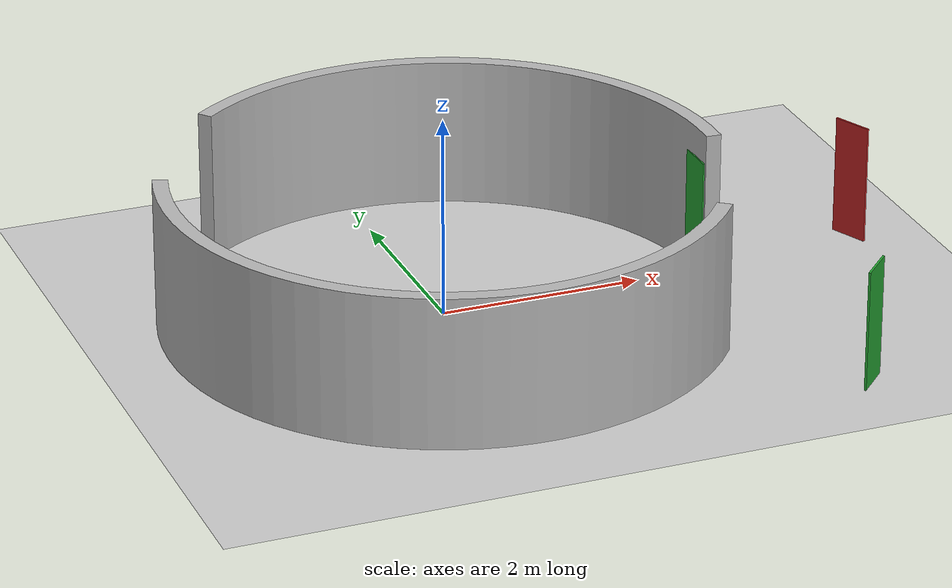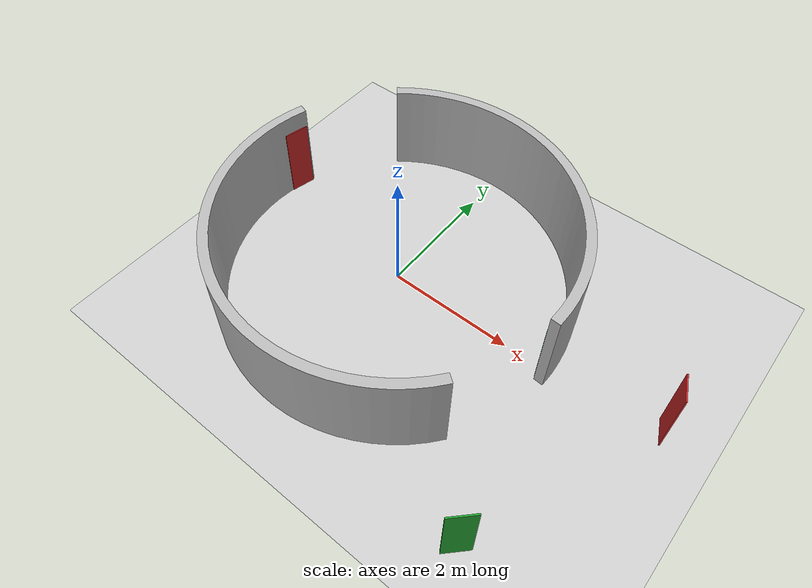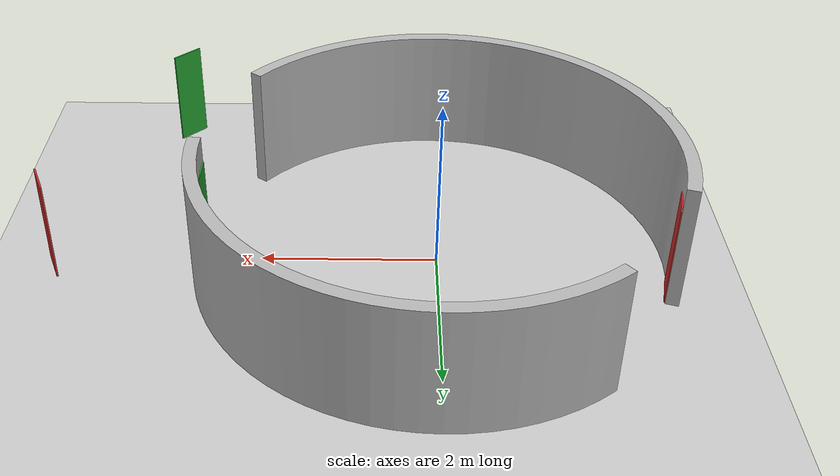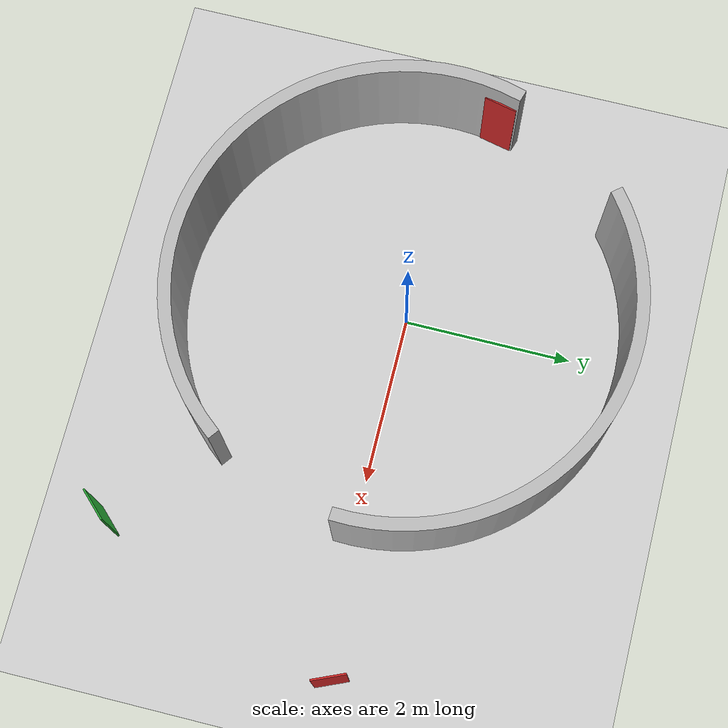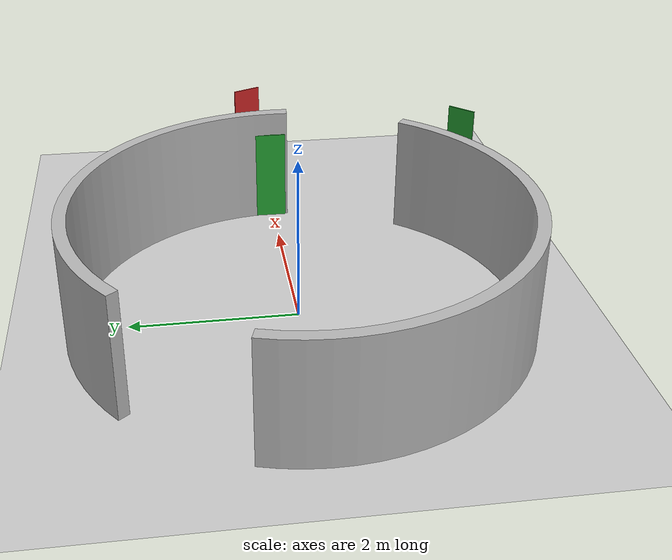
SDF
<sdf version="1.6">
 <world name="default">
  <light name="sun" type="directional">
   <pose>0 0 10 0 -0 0</pose>
   <diffuse>0.8 0.8 0.8 1</diffuse>
   <specular>0.2 0.2 0.2 1</specular>
   <attenuation>
    <range>1000</range>
    <constant>0.9</constant>
    <linear>0.01</linear>
    <quadratic>0.001</quadratic>
   </attenuation>
   <direction>-0.5 0.1 -0.9</direction>
  </light>
  <model name="ground_plane">
   <static>1</static>
   <link name="link">
    <collision name="collision">
     <geometry><plane><normal>0 0 1</normal><size>100 100</size></plane></geometry>
     <surface>
      <contact><collide_bitmask>65535</collide_bitmask></contact>
      <friction><ode><mu>100</mu><mu2>50</mu2></ode></friction>
     </surface>
    </collision>
    <visual name="visual">
     <cast_shadows>0</cast_shadows>
     <geometry><plane><normal>0 0 1</normal><size>100 100</size></plane></geometry>
     <material>
      <script><uri>file://media/materials/scripts/gazebo.material</uri><name>Gazebo/Grey</name></script>
     </material>
    </visual>
   </link>
  </model>
  <gravity>0 0 -9.8</gravity>
  <magnetic_field>6e-06 2.3e-05 -4.2e-05</magnetic_field>
  <atmosphere type="adiabatic"/>
  <physics name="default_physics" default="0" type="ode">
   <max_step_size>0.001</max_step_size>
   <real_time_factor>1</real_time_factor>
   <real_time_update_rate>1000</real_time_update_rate>
  </physics>
  <scene><ambient>0.4 0.4 0.4 1</ambient><background>0.7 0.7 0.7 1</background><shadows>1</shadows></scene>
  <audio><device>default</device></audio>
  <spherical_coordinates>
   <surface_model>EARTH_WGS84</surface_model>
   <latitude_deg>0</latitude_deg>
   <longitude_deg>0</longitude_deg>
   <elevation>0</elevation>
   <heading_deg>0</heading_deg>
  </spherical_coordinates>
  <model name="fire_hydrant">
   <static>1</static>
   <link name="link">
    <collision name="collision">
     <geometry><mesh><uri>model://round_A/meshes/round_A.dae</uri></mesh></geometry>
    </collision>
    <visual name="visual"><geometry><mesh><uri>model://round_A/meshes/round_A.dae</uri></mesh></geometry></visual>
   </link>
   <pose>-0.016652 0.029272 0 0 -0 0</pose>
  </model>
  <model name="red_box">
   <static>1</static>
   <link name="box">
    <pose>0 0 0.6 0 -0 0</pose>
    <collision name="collision"><geometry><box><size>0.4 0.02 1.2</size></box></geometry></collision>
    <visual name="visual">
     <geometry><box><size>0.4 0.02 1.2</size></box></geometry>
     <material>
      <script>
       <uri>model://red_box/materials/scripts</uri>
       <uri>model://red_box/materials/textures</uri>
       <name>red_box</name>
      </script>
     </material>
    </visual>
   </link>
   <pose>-2.51299 0.512974 0 0 -0 1.3513</pose>
  </model>
  <model name="green_box">
   <static>1</static>
   <link name="box">
    <pose>0 0 0.6 0 -0 0</pose>
    <collision name="collision"><geometry><box><size>0.4 0.02 1.2</size></box></geometry></collision>
    <visual name="visual">
     <geometry><box><size>0.4 0.02 1.2</size></box></geometry>
     <material>
      <script>
       <uri>model://green_box/materials/scripts</uri>
       <uri>model://green_box/materials/textures</uri>
       <name>green_box</name>
      </script>
     </material>
    </visual>
   </link>
   <pose>2.61017 0.032388 -0 0 -0 1.56143</pose>
  </model>
  <model name="green_box_0">
   <static>1</static>
   <link name="box">
    <pose>0 0 0.6 0 -0 0</pose>
    <collision name="collision"><geometry><box><size>0.4 0.02 1.2</size></box></geometry></collision>
    <visual name="visual">
     <geometry><box><size>0.4 0.02 1.2</size></box></geometry>
     <material>
      <script>
       <uri>model://green_box/materials/scripts</uri>
       <uri>model://green_box/materials/textures</uri>
       <name>green_box</name>
      </script>
     </material>
    </visual>
   </link>
   <pose>3.16884 -2.7756 0 0 -0 0.797449</pose>
  </model>
  <model name="red_box_0">
   <static>1</static>
   <link name="box">
    <pose>0 0 0.6 0 -0 0</pose>
    <collision name="collision"><geometry><box><size>0.4 0.02 1.2</size></box></geometry></collision>
    <visual name="visual">
     <geometry><box><size>0.4 0.02 1.2</size></box></geometry>
     <material>
      <script>
       <uri>model://red_box/materials/scripts</uri>
       <uri>model://red_box/materials/textures</uri>
       <name>red_box</name>
      </script>
     </material>
    </visual>
   </link>
   <pose>4.34949 0.191942 0 0 0 -1.15974</pose>
  </model>
 </world>
</sdf>
